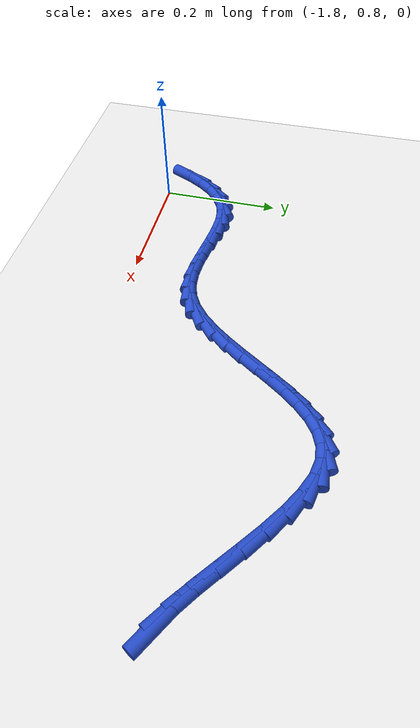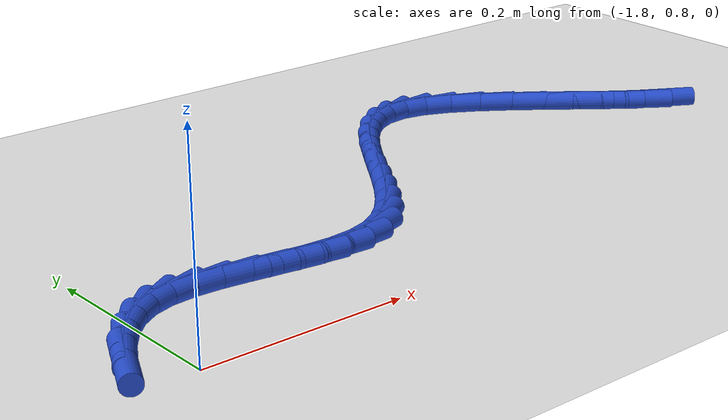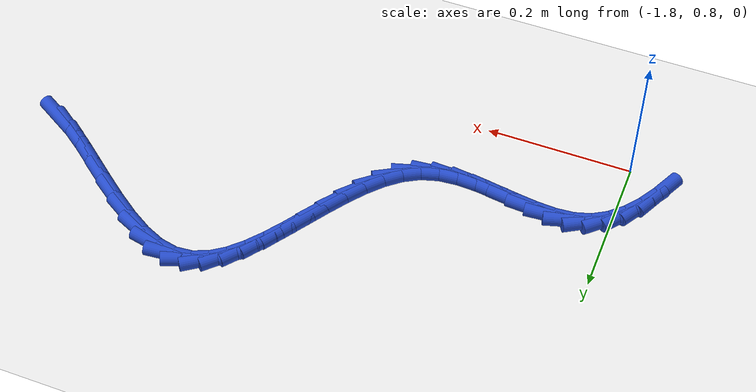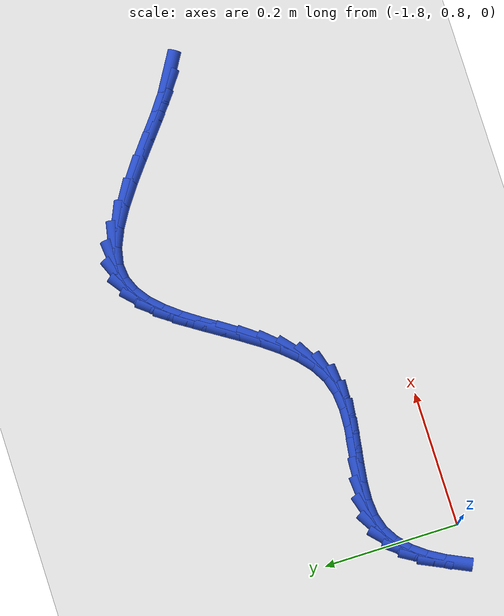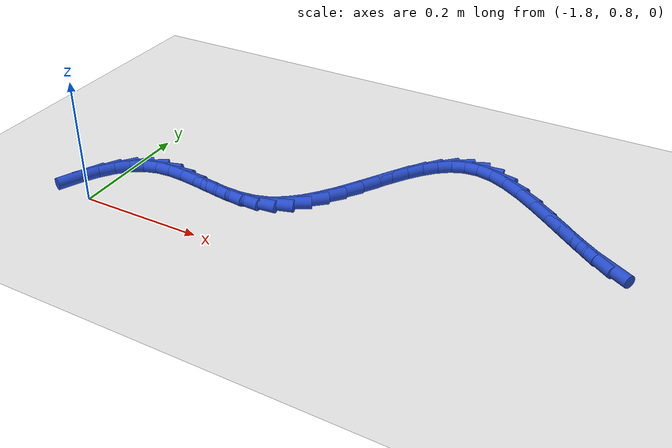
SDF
<sdf version="1.6">
 <world name="default">
  <model name="ground_plane">
   <static>1</static>
   <link name="link">
    <collision name="collision">
     <geometry><plane><normal>0 0 1</normal><size>100 100</size></plane></geometry>
     <surface><friction><ode><mu>100</mu><mu2>50</mu2></ode></friction></surface>
    </collision>
    <visual name="visual">
     <cast_shadows>0</cast_shadows>
     <geometry><plane><normal>0 0 1</normal><size>100 100</size></plane></geometry>
     <material>
      <script><uri>file://media/materials/scripts/gazebo.material</uri><name>Gazebo/WhiteGlow</name></script>
     </material>
    </visual>
   </link>
  </model>
  <model name="line">
   <link name="link_69">
    <pose>-1.0496607918181413 1.0021750279037025 0.01 0 1.57 -0.5331436619504716</pose>
    <collision name="collision">
     <geometry><cylinder><radius>0.01</radius><length>0.08</length></cylinder></geometry>
    </collision>
    <visual name="visual">
     <material>
      <script><name>Gazebo/Blue</name><uri>file://media/materials/scripts/gazebo.material</uri></script>
     </material>
     <geometry><cylinder><radius>0.01</radius><length>0.08</length></cylinder></geometry>
    </visual>
   </link>
   <link name="link_70">
    <pose>-1.0721621940200374 1.0154541785764952 0.01 0 1.57 -0.6256262199374254</pose>
    <collision name="collision">
     <geometry><cylinder><radius>0.01</radius><length>0.08</length></cylinder></geometry>
    </collision>
    <visual name="visual">
     <material>
      <script><name>Gazebo/Blue</name><uri>file://media/materials/scripts/gazebo.material</uri></script>
     </material>
     <geometry><cylinder><radius>0.01</radius><length>0.08</length></cylinder></geometry>
    </visual>
   </link>
   <link name="link_71">
    <pose>-1.0973301194027114 1.0336364206932893 0.01 0 1.57 -0.6670061128003449</pose>
    <collision name="collision">
     <geometry><cylinder><radius>0.01</radius><length>0.08</length></cylinder></geometry>
    </collision>
    <visual name="visual">
     <material>
      <script><name>Gazebo/Blue</name><uri>file://media/materials/scripts/gazebo.material</uri></script>
     </material>
     <geometry><cylinder><radius>0.01</radius><length>0.08</length></cylinder></geometry>
    </visual>
   </link>
   <link name="link_72">
    <pose>-1.1245044691339532 1.0550333036939925 0.01 0 1.57 -0.6770144145226347</pose>
    <collision name="collision">
     <geometry><cylinder><radius>0.01</radius><length>0.08</length></cylinder></geometry>
    </collision>
    <visual name="visual">
     <material>
      <script><name>Gazebo/Blue</name><uri>file://media/materials/scripts/gazebo.material</uri></script>
     </material>
     <geometry><cylinder><radius>0.01</radius><length>0.08</length></cylinder></geometry>
    </visual>
   </link>
   <link name="link_73">
    <pose>-1.1530251443815525 1.077956377018514 0.01 0 1.57 -0.6619882557165395</pose>
    <collision name="collision">
     <geometry><cylinder><radius>0.01</radius><length>0.08</length></cylinder></geometry>
    </collision>
    <visual name="visual">
     <material>
      <script><name>Gazebo/Blue</name><uri>file://media/materials/scripts/gazebo.material</uri></script>
     </material>
     <geometry><cylinder><radius>0.01</radius><length>0.08</length></cylinder></geometry>
    </visual>
   </link>
   <link name="link_74">
    <pose>-1.1822320463132976 1.1007171901067612 0.01 0 1.57 -0.620914360654276</pose>
    <collision name="collision">
     <geometry><cylinder><radius>0.01</radius><length>0.08</length></cylinder></geometry>
    </collision>
    <visual name="visual">
     <material>
      <script><name>Gazebo/Blue</name><uri>file://media/materials/scripts/gazebo.material</uri></script>
     </material>
     <geometry><cylinder><radius>0.01</radius><length>0.08</length></cylinder></geometry>
    </visual>
   </link>
   <link name="link_75">
    <pose>-1.2114650760969794 1.1216272923986423 0.01 0 1.57 -0.5458396638599382</pose>
    <collision name="collision">
     <geometry><cylinder><radius>0.01</radius><length>0.08</length></cylinder></geometry>
    </collision>
    <visual name="visual">
     <material>
      <script><name>Gazebo/Blue</name><uri>file://media/materials/scripts/gazebo.material</uri></script>
     </material>
     <geometry><cylinder><radius>0.01</radius><length>0.08</length></cylinder></geometry>
    </visual>
   </link>
   <link name="link_76">
    <pose>-1.240064134900386 1.1389982333340656 0.01 0 1.57 -0.41846218507310134</pose>
    <collision name="collision">
     <geometry><cylinder><radius>0.01</radius><length>0.08</length></cylinder></geometry>
    </collision>
    <visual name="visual">
     <material>
      <script><name>Gazebo/Blue</name><uri>file://media/materials/scripts/gazebo.material</uri></script>
     </material>
     <geometry><cylinder><radius>0.01</radius><length>0.08</length></cylinder></geometry>
    </visual>
   </link>
   <link name="link_77">
    <pose>-1.2673691238913072 1.1511415623529393 0.01 0 1.57 -0.2042823062850363</pose>
    <collision name="collision">
     <geometry><cylinder><radius>0.01</radius><length>0.08</length></cylinder></geometry>
    </collision>
    <visual name="visual">
     <material>
      <script><name>Gazebo/Blue</name><uri>file://media/materials/scripts/gazebo.material</uri></script>
     </material>
     <geometry><cylinder><radius>0.01</radius><length>0.08</length></cylinder></geometry>
    </visual>
   </link>
   <link name="link_78">
    <pose>-1.2927297216450682 1.1563955733937752 0.01 0 1.57 0.09427145604456666</pose>
    <collision name="collision">
     <geometry><cylinder><radius>0.01</radius><length>0.08</length></cylinder></geometry>
    </collision>
    <visual name="visual">
     <material>
      <script><name>Gazebo/Blue</name><uri>file://media/materials/scripts/gazebo.material</uri></script>
     </material>
     <geometry><cylinder><radius>0.01</radius><length>0.08</length></cylinder></geometry>
    </visual>
   </link>
   <link name="link_79">
    <pose>-1.315900025350138 1.1542047813433638 0.01 0 1.57 0.38877565157395133</pose>
    <collision name="collision">
     <geometry><cylinder><radius>0.01</radius><length>0.08</length></cylinder></geometry>
    </collision>
    <visual name="visual">
     <material>
      <script><name>Gazebo/Blue</name><uri>file://media/materials/scripts/gazebo.material</uri></script>
     </material>
     <geometry><cylinder><radius>0.01</radius><length>0.08</length></cylinder></geometry>
    </visual>
   </link>
   <link name="link_80">
    <pose>-1.3371740066250848 1.145490439261754 0.01 0 1.57 0.6247983886156966</pose>
    <collision name="collision">
     <geometry><cylinder><radius>0.01</radius><length>0.08</length></cylinder></geometry>
    </collision>
    <visual name="visual">
     <material>
      <script><name>Gazebo/Blue</name><uri>file://media/materials/scripts/gazebo.material</uri></script>
     </material>
     <geometry><cylinder><radius>0.01</radius><length>0.08</length></cylinder></geometry>
    </visual>
   </link>
   <link name="link_81">
    <pose>-1.356883216381949 1.1312765922178505 0.01 0 1.57 0.7911378040417711</pose>
    <collision name="collision">
     <geometry><cylinder><radius>0.01</radius><length>0.08</length></cylinder></geometry>
    </collision>
    <visual name="visual">
     <material>
      <script><name>Gazebo/Blue</name><uri>file://media/materials/scripts/gazebo.material</uri></script>
     </material>
     <geometry><cylinder><radius>0.01</radius><length>0.08</length></cylinder></geometry>
    </visual>
   </link>
   <link name="link_82">
    <pose>-1.3753592055327737 1.1125872852805587 0.01 0 1.57 0.8998746277509427</pose>
    <collision name="collision">
     <geometry><cylinder><radius>0.01</radius><length>0.08</length></cylinder></geometry>
    </collision>
    <visual name="visual">
     <material>
      <script><name>Gazebo/Blue</name><uri>file://media/materials/scripts/gazebo.material</uri></script>
     </material>
     <geometry><cylinder><radius>0.01</radius><length>0.08</length></cylinder></geometry>
    </visual>
   </link>
   <link name="link_83">
    <pose>-1.392933524989598 1.0904465635187826 0.01 0 1.57 0.9653748893731002</pose>
    <collision name="collision">
     <geometry><cylinder><radius>0.01</radius><length>0.08</length></cylinder></geometry>
    </collision>
    <visual name="visual">
     <material>
      <script><name>Gazebo/Blue</name><uri>file://media/materials/scripts/gazebo.material</uri></script>
     </material>
     <geometry><cylinder><radius>0.01</radius><length>0.08</length></cylinder></geometry>
    </visual>
   </link>
   <link name="link_84">
    <pose>-1.4099377256644658 1.0658784720014278 0.01 0 1.57 0.9975616064486335</pose>
    <collision name="collision">
     <geometry><cylinder><radius>0.01</radius><length>0.08</length></cylinder></geometry>
    </collision>
    <visual name="visual">
     <material>
      <script><name>Gazebo/Blue</name><uri>file://media/materials/scripts/gazebo.material</uri></script>
     </material>
     <geometry><cylinder><radius>0.01</radius><length>0.08</length></cylinder></geometry>
    </visual>
   </link>
   <link name="link_85">
    <pose>-1.4267033584694182 1.0399070557973995 0.01 0 1.57 1.0016400943875117</pose>
    <collision name="collision">
     <geometry><cylinder><radius>0.01</radius><length>0.08</length></cylinder></geometry>
    </collision>
    <visual name="visual">
     <material>
      <script><name>Gazebo/Blue</name><uri>file://media/materials/scripts/gazebo.material</uri></script>
     </material>
     <geometry><cylinder><radius>0.01</radius><length>0.08</length></cylinder></geometry>
    </visual>
   </link>
   <link name="link_86">
    <pose>-1.4435619743164967 1.0135563599756021 0.01 0 1.57 0.9788756502216338</pose>
    <collision name="collision">
     <geometry><cylinder><radius>0.01</radius><length>0.08</length></cylinder></geometry>
    </collision>
    <visual name="visual">
     <material>
      <script><name>Gazebo/Blue</name><uri>file://media/materials/scripts/gazebo.material</uri></script>
     </material>
     <geometry><cylinder><radius>0.01</radius><length>0.08</length></cylinder></geometry>
    </visual>
   </link>
   <link name="link_87">
    <pose>-1.460845124117743 0.98785042960494 0.01 0 1.57 0.9269918954873131</pose>
    <collision name="collision">
     <geometry><cylinder><radius>0.01</radius><length>0.08</length></cylinder></geometry>
    </collision>
    <visual name="visual">
     <material>
      <script><name>Gazebo/Blue</name><uri>file://media/materials/scripts/gazebo.material</uri></script>
     </material>
     <geometry><cylinder><radius>0.01</radius><length>0.08</length></cylinder></geometry>
    </visual>
   </link>
   <link name="link_88">
    <pose>-1.478884358785199 0.9638133097543193 0.01 0 1.57 0.8401329522377124</pose>
    <collision name="collision">
     <geometry><cylinder><radius>0.01</radius><length>0.08</length></cylinder></geometry>
    </collision>
    <visual name="visual">
     <material>
      <script><name>Gazebo/Blue</name><uri>file://media/materials/scripts/gazebo.material</uri></script>
     </material>
     <geometry><cylinder><radius>0.01</radius><length>0.08</length></cylinder></geometry>
    </visual>
   </link>
   <link name="link_89">
    <pose>-1.4980112292309056 0.9424690454926443 0.01 0 1.57 0.7090878450290222</pose>
    <collision name="collision">
     <geometry><cylinder><radius>0.01</radius><length>0.08</length></cylinder></geometry>
    </collision>
    <visual name="visual">
     <material>
      <script><name>Gazebo/Blue</name><uri>file://media/materials/scripts/gazebo.material</uri></script>
     </material>
     <geometry><cylinder><radius>0.01</radius><length>0.08</length></cylinder></geometry>
    </visual>
   </link>
   <link name="link_90">
    <pose>-1.5185572863669048 0.9248416818888197 0.01 0 1.57 0.5240479646401074</pose>
    <collision name="collision">
     <geometry><cylinder><radius>0.01</radius><length>0.08</length></cylinder></geometry>
    </collision>
    <visual name="visual">
     <material>
      <script><name>Gazebo/Blue</name><uri>file://media/materials/scripts/gazebo.material</uri></script>
     </material>
     <geometry><cylinder><radius>0.01</radius><length>0.08</length></cylinder></geometry>
    </visual>
   </link>
   <link name="link_91">
    <pose>-1.5408540811052391 0.9119552640117508 0.01 0 1.57 0.2909570478206865</pose>
    <collision name="collision">
     <geometry><cylinder><radius>0.01</radius><length>0.08</length></cylinder></geometry>
    </collision>
    <visual name="visual">
     <material>
      <script><name>Gazebo/Blue</name><uri>file://media/materials/scripts/gazebo.material</uri></script>
     </material>
     <geometry><cylinder><radius>0.01</radius><length>0.08</length></cylinder></geometry>
    </visual>
   </link>
   <link name="link_92">
    <pose>-1.5651743308298893 0.9046724349298066 0.01 0 1.57 0.08770569021732558</pose>
    <collision name="collision">
     <geometry><cylinder><radius>0.01</radius><length>0.08</length></cylinder></geometry>
    </collision>
    <visual name="visual">
     <material>
      <script><name>Gazebo/Blue</name><uri>file://media/materials/scripts/gazebo.material</uri></script>
     </material>
     <geometry><cylinder><radius>0.01</radius><length>0.08</length></cylinder></geometry>
    </visual>
   </link>
   <link name="link_93">
    <pose>-1.591252548164642 0.9023793441564351 0.01 0 1.57 -0.04728728168244073</pose>
    <collision name="collision">
     <geometry><cylinder><radius>0.01</radius><length>0.08</length></cylinder></geometry>
    </collision>
    <visual name="visual">
     <material>
      <script><name>Gazebo/Blue</name><uri>file://media/materials/scripts/gazebo.material</uri></script>
     </material>
     <geometry><cylinder><radius>0.01</radius><length>0.08</length></cylinder></geometry>
    </visual>
   </link>
   <link name="link_94">
    <pose>-1.6185346448253197 0.903670402796084 0.01 0 1.57 -0.12333012614310387</pose>
    <collision name="collision">
     <geometry><cylinder><radius>0.01</radius><length>0.08</length></cylinder></geometry>
    </collision>
    <visual name="visual">
     <material>
      <script><name>Gazebo/Blue</name><uri>file://media/materials/scripts/gazebo.material</uri></script>
     </material>
     <geometry><cylinder><radius>0.01</radius><length>0.08</length></cylinder></geometry>
    </visual>
   </link>
   <link name="link_95">
    <pose>-1.6464637825638218 0.907132477791001 0.01 0 1.57 -0.1494852640328654</pose>
    <collision name="collision">
     <geometry><cylinder><radius>0.01</radius><length>0.08</length></cylinder></geometry>
    </collision>
    <visual name="visual">
     <material>
      <script><name>Gazebo/Blue</name><uri>file://media/materials/scripts/gazebo.material</uri></script>
     </material>
     <geometry><cylinder><radius>0.01</radius><length>0.08</length></cylinder></geometry>
    </visual>
   </link>
   <link name="link_96">
    <pose>-1.6744831231320467 0.9113524360834336 0.01 0 1.57 -0.12866310144273196</pose>
    <collision name="collision">
     <geometry><cylinder><radius>0.01</radius><length>0.08</length></cylinder></geometry>
    </collision>
    <visual name="visual">
     <material>
      <script><name>Gazebo/Blue</name><uri>file://media/materials/scripts/gazebo.material</uri></script>
     </material>
     <geometry><cylinder><radius>0.01</radius><length>0.08</length></cylinder></geometry>
    </visual>
   </link>
   <link name="link_97">
    <pose>-1.702035828281895 0.91491714461563 0.01 0 1.57 -0.05634320728483724</pose>
    <collision name="collision">
     <geometry><cylinder><radius>0.01</radius><length>0.08</length></cylinder></geometry>
    </collision>
    <visual name="visual">
     <material>
      <script><name>Gazebo/Blue</name><uri>file://media/materials/scripts/gazebo.material</uri></script>
     </material>
     <geometry><cylinder><radius>0.01</radius><length>0.08</length></cylinder></geometry>
    </visual>
   </link>
   <link name="link_98">
    <pose>-1.7285650597652658 0.9164134703298376 0.01 0 1.57 0.0794028901016265</pose>
    <collision name="collision">
     <geometry><cylinder><radius>0.01</radius><length>0.08</length></cylinder></geometry>
    </collision>
    <visual name="visual">
     <material>
      <script><name>Gazebo/Blue</name><uri>file://media/materials/scripts/gazebo.material</uri></script>
     </material>
     <geometry><cylinder><radius>0.01</radius><length>0.08</length></cylinder></geometry>
    </visual>
   </link>
   <link name="link_99">
    <pose>-1.7535139793340586 0.9144282801683038 0.01 0 1.57 0.29225060823230437</pose>
    <collision name="collision">
     <geometry><cylinder><radius>0.01</radius><length>0.08</length></cylinder></geometry>
    </collision>
    <visual name="visual">
     <material>
      <script><name>Gazebo/Blue</name><uri>file://media/materials/scripts/gazebo.material</uri></script>
     </material>
     <geometry><cylinder><radius>0.01</radius><length>0.08</length></cylinder></geometry>
    </visual>
   </link>
   <link name="link_100">
    <pose>-1.7763306731640065 0.9075635250086587 0.01 0 1.57 0.542320899658604</pose>
    <collision name="collision">
     <geometry><cylinder><radius>0.01</radius><length>0.08</length></cylinder></geometry>
    </collision>
    <visual name="visual">
     <material>
      <script><name>Gazebo/Blue</name><uri>file://media/materials/scripts/gazebo.material</uri></script>
     </material>
     <geometry><cylinder><radius>0.01</radius><length>0.08</length></cylinder></geometry>
    </visual>
   </link>
   <link name="link_101">
    <pose>-1.7967389519031602 0.8952657235935396 0.01 0 1.57 0.7532266738081173</pose>
    <collision name="collision">
     <geometry><cylinder><radius>0.01</radius><length>0.08</length></cylinder></geometry>
    </collision>
    <visual name="visual">
     <material>
      <script><name>Gazebo/Blue</name><uri>file://media/materials/scripts/gazebo.material</uri></script>
     </material>
     <geometry><cylinder><radius>0.01</radius><length>0.08</length></cylinder></geometry>
    </visual>
   </link>
   <link name="link_102">
    <pose>-1.8148790187731947 0.8782568410703052 0.01 0 1.57 0.9158300124964803</pose>
    <collision name="collision">
     <geometry><cylinder><radius>0.01</radius><length>0.08</length></cylinder></geometry>
    </collision>
    <visual name="visual">
     <material>
      <script><name>Gazebo/Blue</name><uri>file://media/materials/scripts/gazebo.material</uri></script>
     </material>
     <geometry><cylinder><radius>0.01</radius><length>0.08</length></cylinder></geometry>
    </visual>
   </link>
   <link name="link_103">
    <pose>-1.8309256424036178 0.8573647194149154 0.01 0 1.57 1.0377958900127318</pose>
    <collision name="collision">
     <geometry><cylinder><radius>0.01</radius><length>0.08</length></cylinder></geometry>
    </collision>
    <visual name="visual">
     <material>
      <script><name>Gazebo/Blue</name><uri>file://media/materials/scripts/gazebo.material</uri></script>
     </material>
     <geometry><cylinder><radius>0.01</radius><length>0.08</length></cylinder></geometry>
    </visual>
   </link>
   <link name="link_104">
    <pose>-1.845053591423937 0.8334172006033307 0.01 0 1.57 1.1288801459231868</pose>
    <collision name="collision">
     <geometry><cylinder><radius>0.01</radius><length>0.08</length></cylinder></geometry>
    </collision>
    <visual name="visual">
     <material>
      <script><name>Gazebo/Blue</name><uri>file://media/materials/scripts/gazebo.material</uri></script>
     </material>
     <geometry><cylinder><radius>0.01</radius><length>0.08</length></cylinder></geometry>
    </visual>
   </link>
  </model>
 </world>
</sdf>
